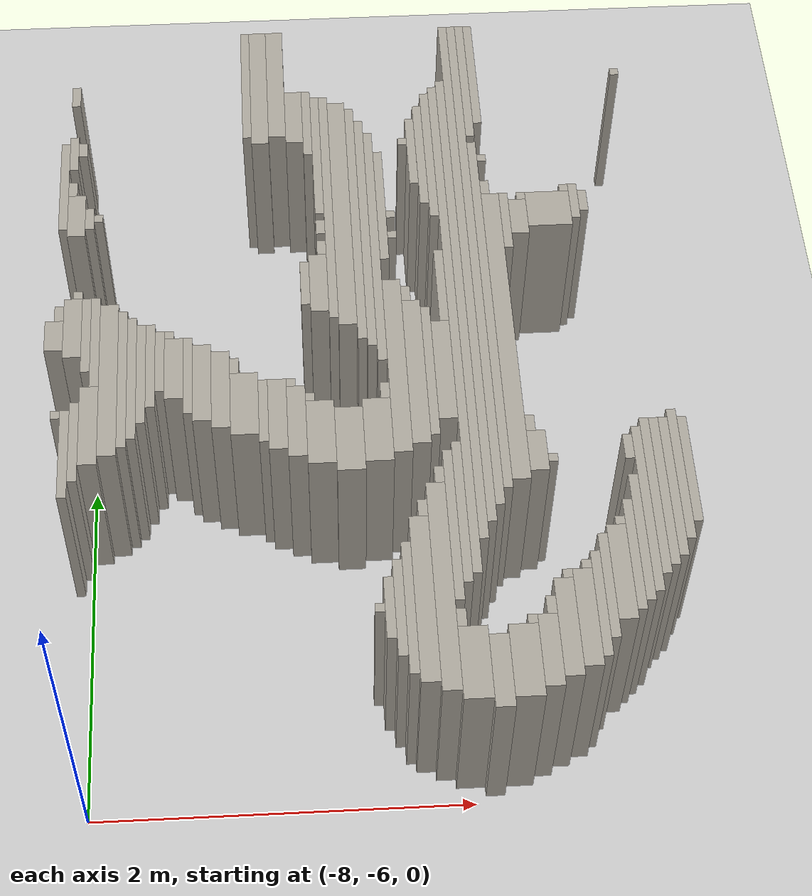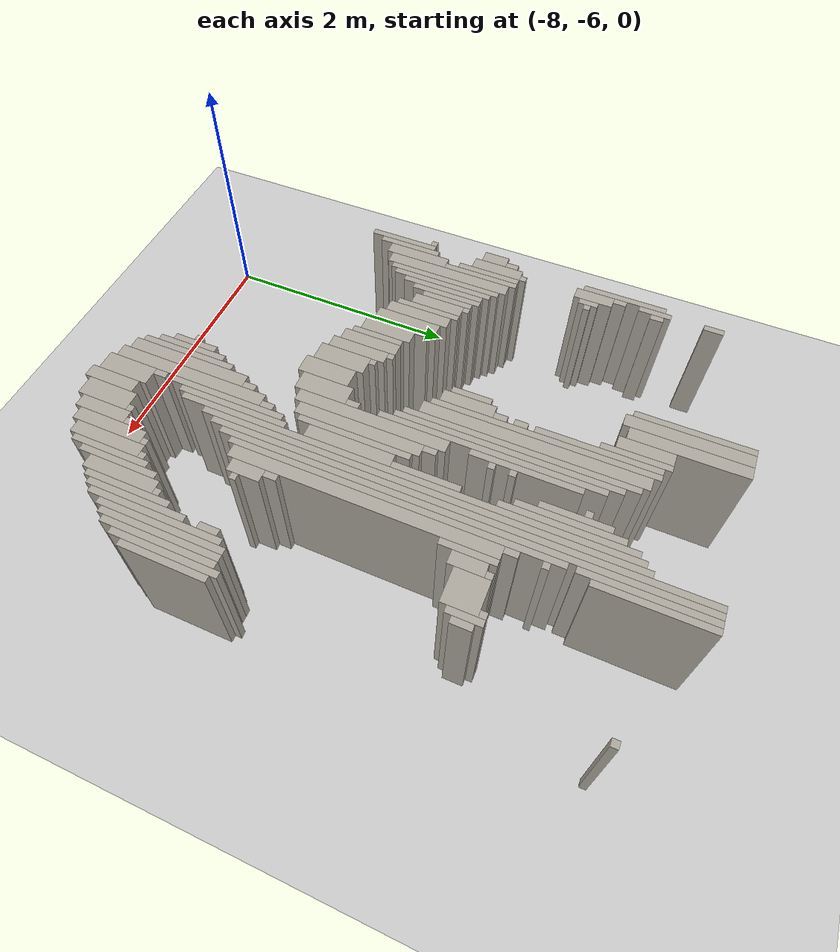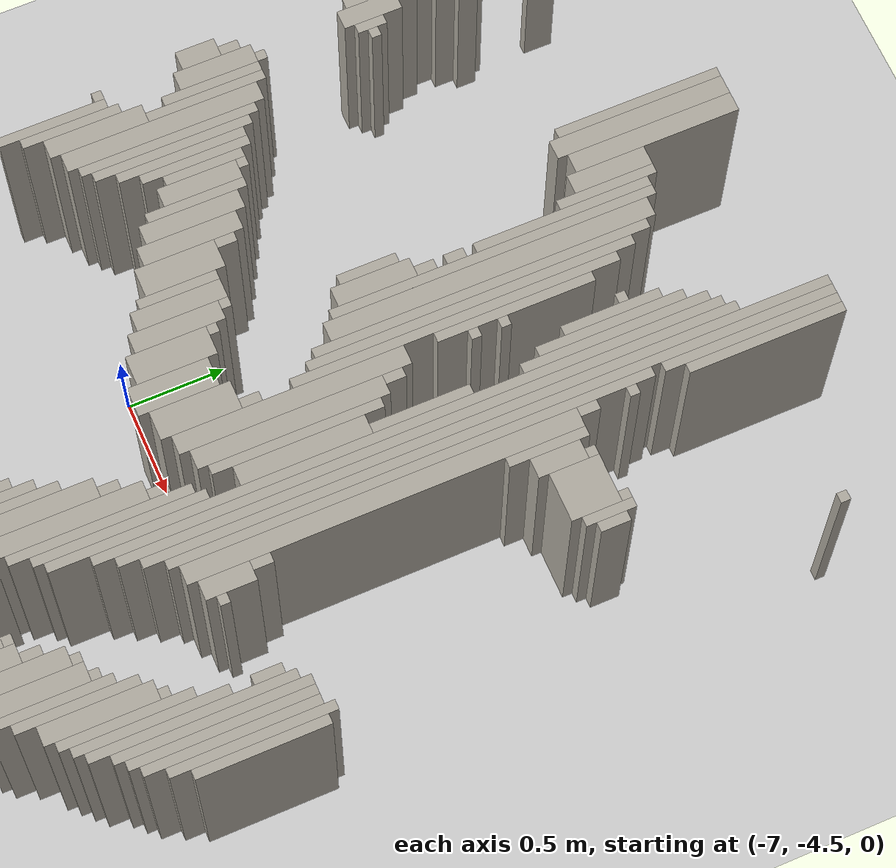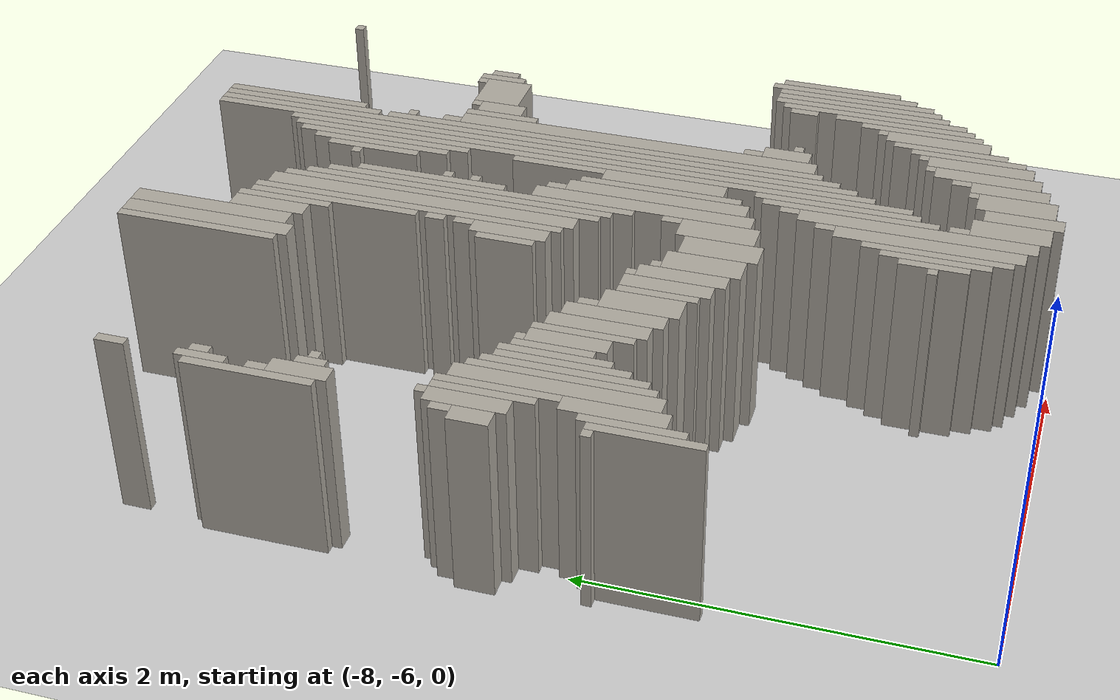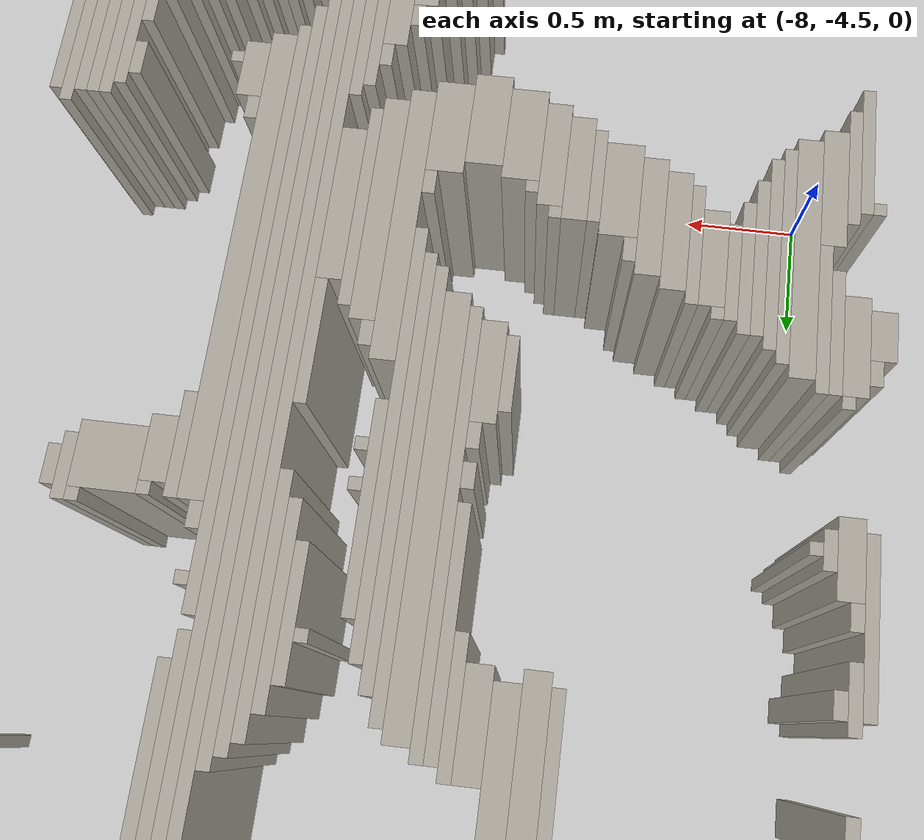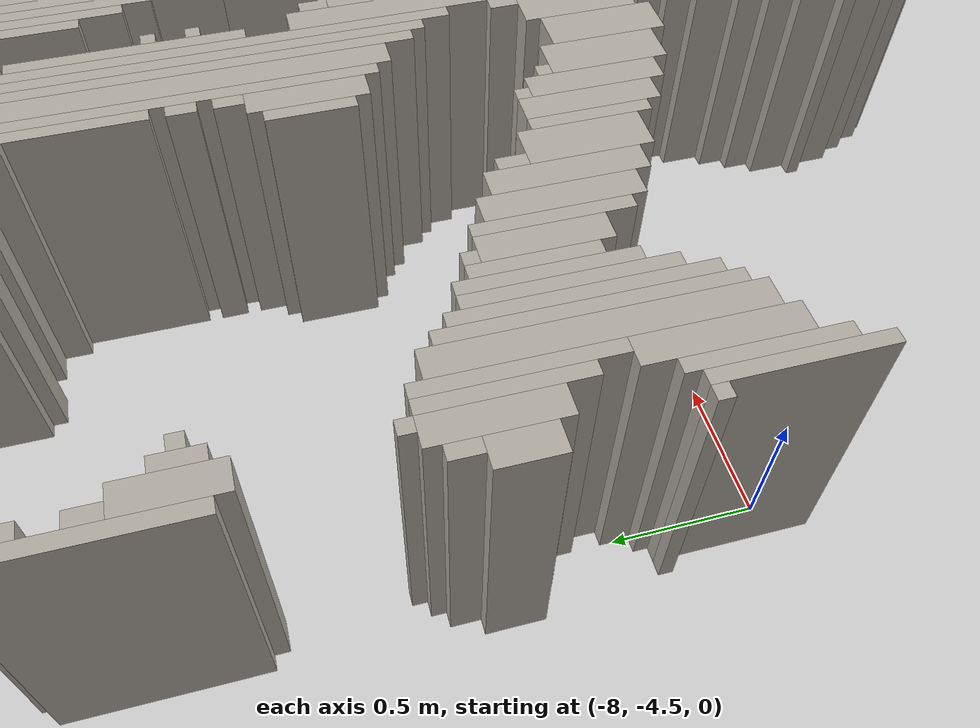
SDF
<sdf version="1.6">
 <world name="fr079_office">
  <include><uri>model://sun</uri></include>
  <include><uri>model://ground_plane</uri></include>
  <model name="fr079_office_walls">
   <static>true</static>
   <link name="w0433">
    <pose>-5.898 -5.756 0.500 0 0 0</pose>
    <collision name="c"><geometry><box><size>0.100 0.400 1.000</size></box></geometry></collision>
    <visual name="v">
     <geometry><box><size>0.100 0.400 1.000</size></box></geometry>
     <material><ambient>0.68 0.66 0.62 1</ambient><diffuse>0.68 0.66 0.62 1</diffuse></material>
    </visual>
   </link>
   <link name="w0450">
    <pose>-6.023 -5.706 0.500 0 0 0</pose>
    <collision name="c"><geometry><box><size>0.150 0.400 1.000</size></box></geometry></collision>
    <visual name="v">
     <geometry><box><size>0.150 0.400 1.000</size></box></geometry>
     <material><ambient>0.68 0.66 0.62 1</ambient><diffuse>0.68 0.66 0.62 1</diffuse></material>
    </visual>
   </link>
   <link name="w0451">
    <pose>-5.773 -5.706 0.500 0 0 0</pose>
    <collision name="c"><geometry><box><size>0.150 0.400 1.000</size></box></geometry></collision>
    <visual name="v">
     <geometry><box><size>0.150 0.400 1.000</size></box></geometry>
     <material><ambient>0.68 0.66 0.62 1</ambient><diffuse>0.68 0.66 0.62 1</diffuse></material>
    </visual>
   </link>
   <link name="w0464">
    <pose>-6.148 -5.256 0.500 0 0 0</pose>
    <collision name="c"><geometry><box><size>0.100 1.200 1.000</size></box></geometry></collision>
    <visual name="v">
     <geometry><box><size>0.100 1.200 1.000</size></box></geometry>
     <material><ambient>0.68 0.66 0.62 1</ambient><diffuse>0.68 0.66 0.62 1</diffuse></material>
    </visual>
   </link>
   <link name="w0465">
    <pose>-5.648 -5.656 0.500 0 0 0</pose>
    <collision name="c"><geometry><box><size>0.100 0.400 1.000</size></box></geometry></collision>
    <visual name="v">
     <geometry><box><size>0.100 0.400 1.000</size></box></geometry>
     <material><ambient>0.68 0.66 0.62 1</ambient><diffuse>0.68 0.66 0.62 1</diffuse></material>
    </visual>
   </link>
   <link name="w0478">
    <pose>-6.248 -5.331 0.500 0 0 0</pose>
    <collision name="c"><geometry><box><size>0.100 0.950 1.000</size></box></geometry></collision>
    <visual name="v">
     <geometry><box><size>0.100 0.950 1.000</size></box></geometry>
     <material><ambient>0.68 0.66 0.62 1</ambient><diffuse>0.68 0.66 0.62 1</diffuse></material>
    </visual>
   </link>
   <link name="w0479">
    <pose>-5.548 -5.531 0.500 0 0 0</pose>
    <collision name="c"><geometry><box><size>0.100 0.550 1.000</size></box></geometry></collision>
    <visual name="v">
     <geometry><box><size>0.100 0.550 1.000</size></box></geometry>
     <material><ambient>0.68 0.66 0.62 1</ambient><diffuse>0.68 0.66 0.62 1</diffuse></material>
    </visual>
   </link>
   <link name="w0494">
    <pose>-6.323 -5.381 0.500 0 0 0</pose>
    <collision name="c"><geometry><box><size>0.050 0.750 1.000</size></box></geometry></collision>
    <visual name="v">
     <geometry><box><size>0.050 0.750 1.000</size></box></geometry>
     <material><ambient>0.68 0.66 0.62 1</ambient><diffuse>0.68 0.66 0.62 1</diffuse></material>
    </visual>
   </link>
   <link name="w0495">
    <pose>-5.448 -5.481 0.500 0 0 0</pose>
    <collision name="c"><geometry><box><size>0.100 0.550 1.000</size></box></geometry></collision>
    <visual name="v">
     <geometry><box><size>0.100 0.550 1.000</size></box></geometry>
     <material><ambient>0.68 0.66 0.62 1</ambient><diffuse>0.68 0.66 0.62 1</diffuse></material>
    </visual>
   </link>
   <link name="w0511">
    <pose>-5.373 -5.406 0.500 0 0 0</pose>
    <collision name="c"><geometry><box><size>0.050 0.600 1.000</size></box></geometry></collision>
    <visual name="v">
     <geometry><box><size>0.050 0.600 1.000</size></box></geometry>
     <material><ambient>0.68 0.66 0.62 1</ambient><diffuse>0.68 0.66 0.62 1</diffuse></material>
    </visual>
   </link>
   <link name="w0520">
    <pose>-6.373 -5.381 0.500 0 0 0</pose>
    <collision name="c"><geometry><box><size>0.050 0.550 1.000</size></box></geometry></collision>
    <visual name="v">
     <geometry><box><size>0.050 0.550 1.000</size></box></geometry>
     <material><ambient>0.68 0.66 0.62 1</ambient><diffuse>0.68 0.66 0.62 1</diffuse></material>
    </visual>
   </link>
   <link name="w0531">
    <pose>-5.323 -5.306 0.500 0 0 0</pose>
    <collision name="c"><geometry><box><size>0.050 0.600 1.000</size></box></geometry></collision>
    <visual name="v">
     <geometry><box><size>0.050 0.600 1.000</size></box></geometry>
     <material><ambient>0.68 0.66 0.62 1</ambient><diffuse>0.68 0.66 0.62 1</diffuse></material>
    </visual>
   </link>
   <link name="w0545">
    <pose>-6.423 -5.381 0.500 0 0 0</pose>
    <collision name="c"><geometry><box><size>0.050 0.350 1.000</size></box></geometry></collision>
    <visual name="v">
     <geometry><box><size>0.050 0.350 1.000</size></box></geometry>
     <material><ambient>0.68 0.66 0.62 1</ambient><diffuse>0.68 0.66 0.62 1</diffuse></material>
    </visual>
   </link>
   <link name="w0556">
    <pose>-6.073 -5.456 0.500 0 0 0</pose>
    <collision name="c"><geometry><box><size>0.050 0.100 1.000</size></box></geometry></collision>
    <visual name="v">
     <geometry><box><size>0.050 0.100 1.000</size></box></geometry>
     <material><ambient>0.68 0.66 0.62 1</ambient><diffuse>0.68 0.66 0.62 1</diffuse></material>
    </visual>
   </link>
   <link name="w0557">
    <pose>-5.723 -5.481 0.500 0 0 0</pose>
    <collision name="c"><geometry><box><size>0.050 0.050 1.000</size></box></geometry></collision>
    <visual name="v">
     <geometry><box><size>0.050 0.050 1.000</size></box></geometry>
     <material><ambient>0.68 0.66 0.62 1</ambient><diffuse>0.68 0.66 0.62 1</diffuse></material>
    </visual>
   </link>
   <link name="w0558">
    <pose>-5.248 -5.231 0.500 0 0 0</pose>
    <collision name="c"><geometry><box><size>0.100 0.550 1.000</size></box></geometry></collision>
    <visual name="v">
     <geometry><box><size>0.100 0.550 1.000</size></box></geometry>
     <material><ambient>0.68 0.66 0.62 1</ambient><diffuse>0.68 0.66 0.62 1</diffuse></material>
    </visual>
   </link>
   <link name="w0563">
    <pose>-5.623 -5.406 0.500 0 0 0</pose>
    <collision name="c"><geometry><box><size>0.050 0.100 1.000</size></box></geometry></collision>
    <visual name="v">
     <geometry><box><size>0.050 0.100 1.000</size></box></geometry>
     <material><ambient>0.68 0.66 0.62 1</ambient><diffuse>0.68 0.66 0.62 1</diffuse></material>
    </visual>
   </link>
   <link name="w0564">
    <pose>-5.173 -5.131 0.500 0 0 0</pose>
    <collision name="c"><geometry><box><size>0.050 0.650 1.000</size></box></geometry></collision>
    <visual name="v">
     <geometry><box><size>0.050 0.650 1.000</size></box></geometry>
     <material><ambient>0.68 0.66 0.62 1</ambient><diffuse>0.68 0.66 0.62 1</diffuse></material>
    </visual>
   </link>
   <link name="w0575">
    <pose>-6.473 -5.381 0.500 0 0 0</pose>
    <collision name="c"><geometry><box><size>0.050 0.050 1.000</size></box></geometry></collision>
    <visual name="v">
     <geometry><box><size>0.050 0.050 1.000</size></box></geometry>
     <material><ambient>0.68 0.66 0.62 1</ambient><diffuse>0.68 0.66 0.62 1</diffuse></material>
    </visual>
   </link>
   <link name="w0576">
    <pose>-5.123 -5.031 0.500 0 0 0</pose>
    <collision name="c"><geometry><box><size>0.050 0.750 1.000</size></box></geometry></collision>
    <visual name="v">
     <geometry><box><size>0.050 0.750 1.000</size></box></geometry>
     <material><ambient>0.68 0.66 0.62 1</ambient><diffuse>0.68 0.66 0.62 1</diffuse></material>
    </visual>
   </link>
   <link name="w0588">
    <pose>-6.073 -4.906 0.500 0 0 0</pose>
    <collision name="c"><geometry><box><size>0.050 0.900 1.000</size></box></geometry></collision>
    <visual name="v">
     <geometry><box><size>0.050 0.900 1.000</size></box></geometry>
     <material><ambient>0.68 0.66 0.62 1</ambient><diffuse>0.68 0.66 0.62 1</diffuse></material>
    </visual>
   </link>
   <link name="w0589">
    <pose>-5.073 -4.856 0.500 0 0 0</pose>
    <collision name="c"><geometry><box><size>0.050 1.000 1.000</size></box></geometry></collision>
    <visual name="v">
     <geometry><box><size>0.050 1.000 1.000</size></box></geometry>
     <material><ambient>0.68 0.66 0.62 1</ambient><diffuse>0.68 0.66 0.62 1</diffuse></material>
    </visual>
   </link>
   <link name="w0618">
    <pose>-6.023 -4.831 0.500 0 0 0</pose>
    <collision name="c"><geometry><box><size>0.050 0.850 1.000</size></box></geometry></collision>
    <visual name="v">
     <geometry><box><size>0.050 0.850 1.000</size></box></geometry>
     <material><ambient>0.68 0.66 0.62 1</ambient><diffuse>0.68 0.66 0.62 1</diffuse></material>
    </visual>
   </link>
   <link name="w0619">
    <pose>-5.523 -5.231 0.500 0 0 0</pose>
    <collision name="c"><geometry><box><size>0.050 0.050 1.000</size></box></geometry></collision>
    <visual name="v">
     <geometry><box><size>0.050 0.050 1.000</size></box></geometry>
     <material><ambient>0.68 0.66 0.62 1</ambient><diffuse>0.68 0.66 0.62 1</diffuse></material>
    </visual>
   </link>
   <link name="w0620">
    <pose>-5.023 -4.781 0.500 0 0 0</pose>
    <collision name="c"><geometry><box><size>0.050 0.950 1.000</size></box></geometry></collision>
    <visual name="v">
     <geometry><box><size>0.050 0.950 1.000</size></box></geometry>
     <material><ambient>0.68 0.66 0.62 1</ambient><diffuse>0.68 0.66 0.62 1</diffuse></material>
    </visual>
   </link>
   <link name="w0634">
    <pose>-5.973 -3.531 0.500 0 0 0</pose>
    <collision name="c"><geometry><box><size>0.050 3.350 1.000</size></box></geometry></collision>
    <visual name="v">
     <geometry><box><size>0.050 3.350 1.000</size></box></geometry>
     <material><ambient>0.68 0.66 0.62 1</ambient><diffuse>0.68 0.66 0.62 1</diffuse></material>
    </visual>
   </link>
   <link name="w0635">
    <pose>-5.423 -5.181 0.500 0 0 0</pose>
    <collision name="c"><geometry><box><size>0.050 0.050 1.000</size></box></geometry></collision>
    <visual name="v">
     <geometry><box><size>0.050 0.050 1.000</size></box></geometry>
     <material><ambient>0.68 0.66 0.62 1</ambient><diffuse>0.68 0.66 0.62 1</diffuse></material>
    </visual>
   </link>
   <link name="w0636">
    <pose>-4.973 -4.756 0.500 0 0 0</pose>
    <collision name="c"><geometry><box><size>0.050 0.900 1.000</size></box></geometry></collision>
    <visual name="v">
     <geometry><box><size>0.050 0.900 1.000</size></box></geometry>
     <material><ambient>0.68 0.66 0.62 1</ambient><diffuse>0.68 0.66 0.62 1</diffuse></material>
    </visual>
   </link>
   <link name="w0650">
    <pose>-4.923 -4.731 0.500 0 0 0</pose>
    <collision name="c"><geometry><box><size>0.050 0.850 1.000</size></box></geometry></collision>
    <visual name="v">
     <geometry><box><size>0.050 0.850 1.000</size></box></geometry>
     <material><ambient>0.68 0.66 0.62 1</ambient><diffuse>0.68 0.66 0.62 1</diffuse></material>
    </visual>
   </link>
   <link name="w0673">
    <pose>-4.873 -4.656 0.500 0 0 0</pose>
    <collision name="c"><geometry><box><size>0.050 0.800 1.000</size></box></geometry></collision>
    <visual name="v">
     <geometry><box><size>0.050 0.800 1.000</size></box></geometry>
     <material><ambient>0.68 0.66 0.62 1</ambient><diffuse>0.68 0.66 0.62 1</diffuse></material>
    </visual>
   </link>
   <link name="w0681">
    <pose>-5.923 -3.406 0.500 0 0 0</pose>
    <collision name="c"><geometry><box><size>0.050 3.200 1.000</size></box></geometry></collision>
    <visual name="v">
     <geometry><box><size>0.050 3.200 1.000</size></box></geometry>
     <material><ambient>0.68 0.66 0.62 1</ambient><diffuse>0.68 0.66 0.62 1</diffuse></material>
    </visual>
   </link>
   <link name="w0693">
    <pose>-5.223 -4.931 0.500 0 0 0</pose>
    <collision name="c"><geometry><box><size>0.050 0.050 1.000</size></box></geometry></collision>
    <visual name="v">
     <geometry><box><size>0.050 0.050 1.000</size></box></geometry>
     <material><ambient>0.68 0.66 0.62 1</ambient><diffuse>0.68 0.66 0.62 1</diffuse></material>
    </visual>
   </link>
   <link name="w0694">
    <pose>-4.823 -4.631 0.500 0 0 0</pose>
    <collision name="c"><geometry><box><size>0.050 0.650 1.000</size></box></geometry></collision>
    <visual name="v">
     <geometry><box><size>0.050 0.650 1.000</size></box></geometry>
     <material><ambient>0.68 0.66 0.62 1</ambient><diffuse>0.68 0.66 0.62 1</diffuse></material>
    </visual>
   </link>
   <link name="w0702">
    <pose>-5.873 -3.131 0.500 0 0 0</pose>
    <collision name="c"><geometry><box><size>0.050 3.550 1.000</size></box></geometry></collision>
    <visual name="v">
     <geometry><box><size>0.050 3.550 1.000</size></box></geometry>
     <material><ambient>0.68 0.66 0.62 1</ambient><diffuse>0.68 0.66 0.62 1</diffuse></material>
    </visual>
   </link>
   <link name="w0715">
    <pose>-6.223 -4.806 0.500 0 0 0</pose>
    <collision name="c"><geometry><box><size>0.050 0.100 1.000</size></box></geometry></collision>
    <visual name="v">
     <geometry><box><size>0.050 0.100 1.000</size></box></geometry>
     <material><ambient>0.68 0.66 0.62 1</ambient><diffuse>0.68 0.66 0.62 1</diffuse></material>
    </visual>
   </link>
   <link name="w0727">
    <pose>-5.823 -3.081 0.500 0 0 0</pose>
    <collision name="c"><geometry><box><size>0.050 3.450 1.000</size></box></geometry></collision>
    <visual name="v">
     <geometry><box><size>0.050 3.450 1.000</size></box></geometry>
     <material><ambient>0.68 0.66 0.62 1</ambient><diffuse>0.68 0.66 0.62 1</diffuse></material>
    </visual>
   </link>
   <link name="w0755">
    <pose>-5.773 -3.506 0.500 0 0 0</pose>
    <collision name="c"><geometry><box><size>0.050 2.400 1.000</size></box></geometry></collision>
    <visual name="v">
     <geometry><box><size>0.050 2.400 1.000</size></box></geometry>
     <material><ambient>0.68 0.66 0.62 1</ambient><diffuse>0.68 0.66 0.62 1</diffuse></material>
    </visual>
   </link>
   <link name="w0767">
    <pose>-8.073 -4.381 0.500 0 0 0</pose>
    <collision name="c"><geometry><box><size>0.050 0.550 1.000</size></box></geometry></collision>
    <visual name="v">
     <geometry><box><size>0.050 0.550 1.000</size></box></geometry>
     <material><ambient>0.68 0.66 0.62 1</ambient><diffuse>0.68 0.66 0.62 1</diffuse></material>
    </visual>
   </link>
   <link name="w0768">
    <pose>-6.123 -4.606 0.500 0 0 0</pose>
    <collision name="c"><geometry><box><size>0.050 0.100 1.000</size></box></geometry></collision>
    <visual name="v">
     <geometry><box><size>0.050 0.100 1.000</size></box></geometry>
     <material><ambient>0.68 0.66 0.62 1</ambient><diffuse>0.68 0.66 0.62 1</diffuse></material>
    </visual>
   </link>
   <link name="w0769">
    <pose>-5.698 -3.681 0.500 0 0 0</pose>
    <collision name="c"><geometry><box><size>0.100 1.950 1.000</size></box></geometry></collision>
    <visual name="v">
     <geometry><box><size>0.100 1.950 1.000</size></box></geometry>
     <material><ambient>0.68 0.66 0.62 1</ambient><diffuse>0.68 0.66 0.62 1</diffuse></material>
    </visual>
   </link>
   <link name="w0786">
    <pose>-5.598 -4.481 0.500 0 0 0</pose>
    <collision name="c"><geometry><box><size>0.100 0.250 1.000</size></box></geometry></collision>
    <visual name="v">
     <geometry><box><size>0.100 0.250 1.000</size></box></geometry>
     <material><ambient>0.68 0.66 0.62 1</ambient><diffuse>0.68 0.66 0.62 1</diffuse></material>
    </visual>
   </link>
   <link name="w0801">
    <pose>-8.023 -4.306 0.500 0 0 0</pose>
    <collision name="c"><geometry><box><size>0.050 0.500 1.000</size></box></geometry></collision>
    <visual name="v">
     <geometry><box><size>0.050 0.500 1.000</size></box></geometry>
     <material><ambient>0.68 0.66 0.62 1</ambient><diffuse>0.68 0.66 0.62 1</diffuse></material>
    </visual>
   </link>
   <link name="w0802">
    <pose>-6.573 -4.356 0.500 0 0 0</pose>
    <collision name="c"><geometry><box><size>0.150 0.400 1.000</size></box></geometry></collision>
    <visual name="v">
     <geometry><box><size>0.150 0.400 1.000</size></box></geometry>
     <material><ambient>0.68 0.66 0.62 1</ambient><diffuse>0.68 0.66 0.62 1</diffuse></material>
    </visual>
   </link>
   <link name="w0803">
    <pose>-5.523 -4.531 0.500 0 0 0</pose>
    <collision name="c"><geometry><box><size>0.050 0.050 1.000</size></box></geometry></collision>
    <visual name="v">
     <geometry><box><size>0.050 0.050 1.000</size></box></geometry>
     <material><ambient>0.68 0.66 0.62 1</ambient><diffuse>0.68 0.66 0.62 1</diffuse></material>
    </visual>
   </link>
   <link name="w0804">
    <pose>-5.123 -4.481 0.500 0 0 0</pose>
    <collision name="c"><geometry><box><size>0.050 0.150 1.000</size></box></geometry></collision>
    <visual name="v">
     <geometry><box><size>0.050 0.150 1.000</size></box></geometry>
     <material><ambient>0.68 0.66 0.62 1</ambient><diffuse>0.68 0.66 0.62 1</diffuse></material>
    </visual>
   </link>
   <link name="w0819">
    <pose>-6.723 -4.306 0.500 0 0 0</pose>
    <collision name="c"><geometry><box><size>0.150 0.400 1.000</size></box></geometry></collision>
    <visual name="v">
     <geometry><box><size>0.150 0.400 1.000</size></box></geometry>
     <material><ambient>0.68 0.66 0.62 1</ambient><diffuse>0.68 0.66 0.62 1</diffuse></material>
    </visual>
   </link>
   <link name="w0820">
    <pose>-6.423 -4.306 0.500 0 0 0</pose>
    <collision name="c"><geometry><box><size>0.150 0.400 1.000</size></box></geometry></collision>
    <visual name="v">
     <geometry><box><size>0.150 0.400 1.000</size></box></geometry>
     <material><ambient>0.68 0.66 0.62 1</ambient><diffuse>0.68 0.66 0.62 1</diffuse></material>
    </visual>
   </link>
   <link name="w0835">
    <pose>-7.948 -4.206 0.500 0 0 0</pose>
    <collision name="c"><geometry><box><size>0.100 0.500 1.000</size></box></geometry></collision>
    <visual name="v">
     <geometry><box><size>0.100 0.500 1.000</size></box></geometry>
     <material><ambient>0.68 0.66 0.62 1</ambient><diffuse>0.68 0.66 0.62 1</diffuse></material>
    </visual>
   </link>
   <link name="w0836">
    <pose>-6.848 -4.231 0.500 0 0 0</pose>
    <collision name="c"><geometry><box><size>0.100 0.450 1.000</size></box></geometry></collision>
    <visual name="v">
     <geometry><box><size>0.100 0.450 1.000</size></box></geometry>
     <material><ambient>0.68 0.66 0.62 1</ambient><diffuse>0.68 0.66 0.62 1</diffuse></material>
    </visual>
   </link>
   <link name="w0837">
    <pose>-6.298 -3.881 0.500 0 0 0</pose>
    <collision name="c"><geometry><box><size>0.100 1.150 1.000</size></box></geometry></collision>
    <visual name="v">
     <geometry><box><size>0.100 1.150 1.000</size></box></geometry>
     <material><ambient>0.68 0.66 0.62 1</ambient><diffuse>0.68 0.66 0.62 1</diffuse></material>
    </visual>
   </link>
   <link name="w0849">
    <pose>-7.848 -3.906 0.500 0 0 0</pose>
    <collision name="c"><geometry><box><size>0.100 1.000 1.000</size></box></geometry></collision>
    <visual name="v">
     <geometry><box><size>0.100 1.000 1.000</size></box></geometry>
     <material><ambient>0.68 0.66 0.62 1</ambient><diffuse>0.68 0.66 0.62 1</diffuse></material>
    </visual>
   </link>
   <link name="w0850">
    <pose>-6.948 -4.181 0.500 0 0 0</pose>
    <collision name="c"><geometry><box><size>0.100 0.450 1.000</size></box></geometry></collision>
    <visual name="v">
     <geometry><box><size>0.100 0.450 1.000</size></box></geometry>
     <material><ambient>0.68 0.66 0.62 1</ambient><diffuse>0.68 0.66 0.62 1</diffuse></material>
    </visual>
   </link>
   <link name="w0851">
    <pose>-6.198 -3.931 0.500 0 0 0</pose>
    <collision name="c"><geometry><box><size>0.100 0.950 1.000</size></box></geometry></collision>
    <visual name="v">
     <geometry><box><size>0.100 0.950 1.000</size></box></geometry>
     <material><ambient>0.68 0.66 0.62 1</ambient><diffuse>0.68 0.66 0.62 1</diffuse></material>
    </visual>
   </link>
   <link name="w0863">
    <pose>-7.773 -3.906 0.500 0 0 0</pose>
    <collision name="c"><geometry><box><size>0.050 0.900 1.000</size></box></geometry></collision>
    <visual name="v">
     <geometry><box><size>0.050 0.900 1.000</size></box></geometry>
     <material><ambient>0.68 0.66 0.62 1</ambient><diffuse>0.68 0.66 0.62 1</diffuse></material>
    </visual>
   </link>
   <link name="w0864">
    <pose>-7.023 -4.156 0.500 0 0 0</pose>
    <collision name="c"><geometry><box><size>0.050 0.400 1.000</size></box></geometry></collision>
    <visual name="v">
     <geometry><box><size>0.050 0.400 1.000</size></box></geometry>
     <material><ambient>0.68 0.66 0.62 1</ambient><diffuse>0.68 0.66 0.62 1</diffuse></material>
    </visual>
   </link>
   <link name="w0865">
    <pose>-6.123 -3.931 0.500 0 0 0</pose>
    <collision name="c"><geometry><box><size>0.050 0.850 1.000</size></box></geometry></collision>
    <visual name="v">
     <geometry><box><size>0.050 0.850 1.000</size></box></geometry>
     <material><ambient>0.68 0.66 0.62 1</ambient><diffuse>0.68 0.66 0.62 1</diffuse></material>
    </visual>
   </link>
   <link name="w0866">
    <pose>-5.623 -4.306 0.500 0 0 0</pose>
    <collision name="c"><geometry><box><size>0.050 0.100 1.000</size></box></geometry></collision>
    <visual name="v">
     <geometry><box><size>0.050 0.100 1.000</size></box></geometry>
     <material><ambient>0.68 0.66 0.62 1</ambient><diffuse>0.68 0.66 0.62 1</diffuse></material>
    </visual>
   </link>
   <link name="w0877">
    <pose>-7.723 -3.906 0.500 0 0 0</pose>
    <collision name="c"><geometry><box><size>0.050 0.800 1.000</size></box></geometry></collision>
    <visual name="v">
     <geometry><box><size>0.050 0.800 1.000</size></box></geometry>
     <material><ambient>0.68 0.66 0.62 1</ambient><diffuse>0.68 0.66 0.62 1</diffuse></material>
    </visual>
   </link>
   <link name="w0878">
    <pose>-7.123 -4.106 0.500 0 0 0</pose>
    <collision name="c"><geometry><box><size>0.150 0.400 1.000</size></box></geometry></collision>
    <visual name="v">
     <geometry><box><size>0.150 0.400 1.000</size></box></geometry>
     <material><ambient>0.68 0.66 0.62 1</ambient><diffuse>0.68 0.66 0.62 1</diffuse></material>
    </visual>
   </link>
   <link name="w0889">
    <pose>-7.248 -4.006 0.500 0 0 0</pose>
    <collision name="c"><geometry><box><size>0.100 0.500 1.000</size></box></geometry></collision>
    <visual name="v">
     <geometry><box><size>0.100 0.500 1.000</size></box></geometry>
     <material><ambient>0.68 0.66 0.62 1</ambient><diffuse>0.68 0.66 0.62 1</diffuse></material>
    </visual>
   </link>
   <link name="w0890">
    <pose>-6.048 -3.931 0.500 0 0 0</pose>
    <collision name="c"><geometry><box><size>0.100 0.650 1.000</size></box></geometry></collision>
    <visual name="v">
     <geometry><box><size>0.100 0.650 1.000</size></box></geometry>
     <material><ambient>0.68 0.66 0.62 1</ambient><diffuse>0.68 0.66 0.62 1</diffuse></material>
    </visual>
   </link>
   <link name="w0908">
    <pose>-7.673 -3.881 0.500 0 0 0</pose>
    <collision name="c"><geometry><box><size>0.050 0.650 1.000</size></box></geometry></collision>
    <visual name="v">
     <geometry><box><size>0.050 0.650 1.000</size></box></geometry>
     <material><ambient>0.68 0.66 0.62 1</ambient><diffuse>0.68 0.66 0.62 1</diffuse></material>
    </visual>
   </link>
   <link name="w0909">
    <pose>-7.348 -3.956 0.500 0 0 0</pose>
    <collision name="c"><geometry><box><size>0.100 0.500 1.000</size></box></geometry></collision>
    <visual name="v">
     <geometry><box><size>0.100 0.500 1.000</size></box></geometry>
     <material><ambient>0.68 0.66 0.62 1</ambient><diffuse>0.68 0.66 0.62 1</diffuse></material>
    </visual>
   </link>
   <link name="w0927">
    <pose>-8.123 -4.131 0.500 0 0 0</pose>
    <collision name="c"><geometry><box><size>0.050 0.050 1.000</size></box></geometry></collision>
    <visual name="v">
     <geometry><box><size>0.050 0.050 1.000</size></box></geometry>
     <material><ambient>0.68 0.66 0.62 1</ambient><diffuse>0.68 0.66 0.62 1</diffuse></material>
    </visual>
   </link>
   <link name="w0928">
    <pose>-7.423 -3.906 0.500 0 0 0</pose>
    <collision name="c"><geometry><box><size>0.050 0.500 1.000</size></box></geometry></collision>
    <visual name="v">
     <geometry><box><size>0.050 0.500 1.000</size></box></geometry>
     <material><ambient>0.68 0.66 0.62 1</ambient><diffuse>0.68 0.66 0.62 1</diffuse></material>
    </visual>
   </link>
   <link name="w0942">
    <pose>-7.623 -3.831 0.500 0 0 0</pose>
    <collision name="c"><geometry><box><size>0.050 0.550 1.000</size></box></geometry></collision>
    <visual name="v">
     <geometry><box><size>0.050 0.550 1.000</size></box></geometry>
     <material><ambient>0.68 0.66 0.62 1</ambient><diffuse>0.68 0.66 0.62 1</diffuse></material>
    </visual>
   </link>
   <link name="w0943">
    <pose>-6.773 -4.081 0.500 0 0 0</pose>
    <collision name="c"><geometry><box><size>0.050 0.050 1.000</size></box></geometry></collision>
    <visual name="v">
     <geometry><box><size>0.050 0.050 1.000</size></box></geometry>
     <material><ambient>0.68 0.66 0.62 1</ambient><diffuse>0.68 0.66 0.62 1</diffuse></material>
    </visual>
   </link>
   <link name="w0944">
    <pose>-6.373 -4.056 0.500 0 0 0</pose>
    <collision name="c"><geometry><box><size>0.050 0.100 1.000</size></box></geometry></collision>
    <visual name="v">
     <geometry><box><size>0.050 0.100 1.000</size></box></geometry>
     <material><ambient>0.68 0.66 0.62 1</ambient><diffuse>0.68 0.66 0.62 1</diffuse></material>
    </visual>
   </link>
   <link name="w0955">
    <pose>-7.498 -3.856 0.500 0 0 0</pose>
    <collision name="c"><geometry><box><size>0.100 0.400 1.000</size></box></geometry></collision>
    <visual name="v">
     <geometry><box><size>0.100 0.400 1.000</size></box></geometry>
     <material><ambient>0.68 0.66 0.62 1</ambient><diffuse>0.68 0.66 0.62 1</diffuse></material>
    </visual>
   </link>
   <link name="w0963">
    <pose>-7.573 -3.806 0.500 0 0 0</pose>
    <collision name="c"><geometry><box><size>0.050 0.400 1.000</size></box></geometry></collision>
    <visual name="v">
     <geometry><box><size>0.050 0.400 1.000</size></box></geometry>
     <material><ambient>0.68 0.66 0.62 1</ambient><diffuse>0.68 0.66 0.62 1</diffuse></material>
    </visual>
   </link>
   <link name="w0964">
    <pose>-6.873 -3.981 0.500 0 0 0</pose>
    <collision name="c"><geometry><box><size>0.050 0.050 1.000</size></box></geometry></collision>
    <visual name="v">
     <geometry><box><size>0.050 0.050 1.000</size></box></geometry>
     <material><ambient>0.68 0.66 0.62 1</ambient><diffuse>0.68 0.66 0.62 1</diffuse></material>
    </visual>
   </link>
   <link name="w0977">
    <pose>-7.923 -3.656 0.500 0 0 0</pose>
    <collision name="c"><geometry><box><size>0.050 0.600 1.000</size></box></geometry></collision>
    <visual name="v">
     <geometry><box><size>0.050 0.600 1.000</size></box></geometry>
     <material><ambient>0.68 0.66 0.62 1</ambient><diffuse>0.68 0.66 0.62 1</diffuse></material>
    </visual>
   </link>
   <link name="w0995">
    <pose>-7.173 -3.856 0.500 0 0 0</pose>
    <collision name="c"><geometry><box><size>0.050 0.100 1.000</size></box></geometry></collision>
    <visual name="v">
     <geometry><box><size>0.050 0.100 1.000</size></box></geometry>
     <material><ambient>0.68 0.66 0.62 1</ambient><diffuse>0.68 0.66 0.62 1</diffuse></material>
    </visual>
   </link>
   <link name="w1003">
    <pose>-7.973 -3.606 0.500 0 0 0</pose>
    <collision name="c"><geometry><box><size>0.050 0.500 1.000</size></box></geometry></collision>
    <visual name="v">
     <geometry><box><size>0.050 0.500 1.000</size></box></geometry>
     <material><ambient>0.68 0.66 0.62 1</ambient><diffuse>0.68 0.66 0.62 1</diffuse></material>
    </visual>
   </link>
   <link name="w1004">
    <pose>-6.373 -3.031 0.500 0 0 0</pose>
    <collision name="c"><geometry><box><size>0.050 1.650 1.000</size></box></geometry></collision>
    <visual name="v">
     <geometry><box><size>0.050 1.650 1.000</size></box></geometry>
     <material><ambient>0.68 0.66 0.62 1</ambient><diffuse>0.68 0.66 0.62 1</diffuse></material>
    </visual>
   </link>
   <link name="w1032">
    <pose>-8.048 -3.556 0.500 0 0 0</pose>
    <collision name="c"><geometry><box><size>0.100 0.400 1.000</size></box></geometry></collision>
    <visual name="v">
     <geometry><box><size>0.100 0.400 1.000</size></box></geometry>
     <material><ambient>0.68 0.66 0.62 1</ambient><diffuse>0.68 0.66 0.62 1</diffuse></material>
    </visual>
   </link>
   <link name="w1033">
    <pose>-6.423 -2.931 0.500 0 0 0</pose>
    <collision name="c"><geometry><box><size>0.050 1.650 1.000</size></box></geometry></collision>
    <visual name="v">
     <geometry><box><size>0.050 1.650 1.000</size></box></geometry>
     <material><ambient>0.68 0.66 0.62 1</ambient><diffuse>0.68 0.66 0.62 1</diffuse></material>
    </visual>
   </link>
   <link name="w1043">
    <pose>-8.148 -3.606 0.500 0 0 0</pose>
    <collision name="c"><geometry><box><size>0.100 0.200 1.000</size></box></geometry></collision>
    <visual name="v">
     <geometry><box><size>0.100 0.200 1.000</size></box></geometry>
     <material><ambient>0.68 0.66 0.62 1</ambient><diffuse>0.68 0.66 0.62 1</diffuse></material>
    </visual>
   </link>
   <link name="w1044">
    <pose>-6.473 -2.856 0.500 0 0 0</pose>
    <collision name="c"><geometry><box><size>0.050 1.700 1.000</size></box></geometry></collision>
    <visual name="v">
     <geometry><box><size>0.050 1.700 1.000</size></box></geometry>
     <material><ambient>0.68 0.66 0.62 1</ambient><diffuse>0.68 0.66 0.62 1</diffuse></material>
    </visual>
   </link>
   <link name="w1057">
    <pose>-7.523 -3.631 0.500 0 0 0</pose>
    <collision name="c"><geometry><box><size>0.050 0.050 1.000</size></box></geometry></collision>
    <visual name="v">
     <geometry><box><size>0.050 0.050 1.000</size></box></geometry>
     <material><ambient>0.68 0.66 0.62 1</ambient><diffuse>0.68 0.66 0.62 1</diffuse></material>
    </visual>
   </link>
   <link name="w1066">
    <pose>-6.548 -2.781 0.500 0 0 0</pose>
    <collision name="c"><geometry><box><size>0.100 1.650 1.000</size></box></geometry></collision>
    <visual name="v">
     <geometry><box><size>0.100 1.650 1.000</size></box></geometry>
     <material><ambient>0.68 0.66 0.62 1</ambient><diffuse>0.68 0.66 0.62 1</diffuse></material>
    </visual>
   </link>
   <link name="w1067">
    <pose>-6.023 -3.356 0.500 0 0 0</pose>
    <collision name="c"><geometry><box><size>0.050 0.500 1.000</size></box></geometry></collision>
    <visual name="v">
     <geometry><box><size>0.050 0.500 1.000</size></box></geometry>
     <material><ambient>0.68 0.66 0.62 1</ambient><diffuse>0.68 0.66 0.62 1</diffuse></material>
    </visual>
   </link>
   <link name="w1077">
    <pose>-6.623 -2.731 0.500 0 0 0</pose>
    <collision name="c"><geometry><box><size>0.050 1.650 1.000</size></box></geometry></collision>
    <visual name="v">
     <geometry><box><size>0.050 1.650 1.000</size></box></geometry>
     <material><ambient>0.68 0.66 0.62 1</ambient><diffuse>0.68 0.66 0.62 1</diffuse></material>
    </visual>
   </link>
   <link name="w1081">
    <pose>-8.123 -3.456 0.500 0 0 0</pose>
    <collision name="c"><geometry><box><size>0.050 0.100 1.000</size></box></geometry></collision>
    <visual name="v">
     <geometry><box><size>0.050 0.100 1.000</size></box></geometry>
     <material><ambient>0.68 0.66 0.62 1</ambient><diffuse>0.68 0.66 0.62 1</diffuse></material>
    </visual>
   </link>
   <link name="w1082">
    <pose>-6.698 -3.306 0.500 0 0 0</pose>
    <collision name="c"><geometry><box><size>0.100 0.400 1.000</size></box></geometry></collision>
    <visual name="v">
     <geometry><box><size>0.100 0.400 1.000</size></box></geometry>
     <material><ambient>0.68 0.66 0.62 1</ambient><diffuse>0.68 0.66 0.62 1</diffuse></material>
    </visual>
   </link>
   <link name="w1090">
    <pose>-6.773 -3.306 0.500 0 0 0</pose>
    <collision name="c"><geometry><box><size>0.050 0.300 1.000</size></box></geometry></collision>
    <visual name="v">
     <geometry><box><size>0.050 0.300 1.000</size></box></geometry>
     <material><ambient>0.68 0.66 0.62 1</ambient><diffuse>0.68 0.66 0.62 1</diffuse></material>
    </visual>
   </link>
   <link name="w1091">
    <pose>-6.223 -3.406 0.500 0 0 0</pose>
    <collision name="c"><geometry><box><size>0.050 0.100 1.000</size></box></geometry></collision>
    <visual name="v">
     <geometry><box><size>0.050 0.100 1.000</size></box></geometry>
     <material><ambient>0.68 0.66 0.62 1</ambient><diffuse>0.68 0.66 0.62 1</diffuse></material>
    </visual>
   </link>
   <link name="w1105">
    <pose>-8.023 -3.331 0.500 0 0 0</pose>
    <collision name="c"><geometry><box><size>0.050 0.050 1.000</size></box></geometry></collision>
    <visual name="v">
     <geometry><box><size>0.050 0.050 1.000</size></box></geometry>
     <material><ambient>0.68 0.66 0.62 1</ambient><diffuse>0.68 0.66 0.62 1</diffuse></material>
    </visual>
   </link>
   <link name="w1124">
    <pose>-6.323 -2.756 0.500 0 0 0</pose>
    <collision name="c"><geometry><box><size>0.050 0.800 1.000</size></box></geometry></collision>
    <visual name="v">
     <geometry><box><size>0.050 0.800 1.000</size></box></geometry>
     <material><ambient>0.68 0.66 0.62 1</ambient><diffuse>0.68 0.66 0.62 1</diffuse></material>
    </visual>
   </link>
   <link name="w1131">
    <pose>-6.673 -3.056 0.500 0 0 0</pose>
    <collision name="c"><geometry><box><size>0.050 0.100 1.000</size></box></geometry></collision>
    <visual name="v">
     <geometry><box><size>0.050 0.100 1.000</size></box></geometry>
     <material><ambient>0.68 0.66 0.62 1</ambient><diffuse>0.68 0.66 0.62 1</diffuse></material>
    </visual>
   </link>
   <link name="w1132">
    <pose>-5.623 -2.906 0.500 0 0 0</pose>
    <collision name="c"><geometry><box><size>0.050 0.400 1.000</size></box></geometry></collision>
    <visual name="v">
     <geometry><box><size>0.050 0.400 1.000</size></box></geometry>
     <material><ambient>0.68 0.66 0.62 1</ambient><diffuse>0.68 0.66 0.62 1</diffuse></material>
    </visual>
   </link>
   <link name="w1150">
    <pose>-6.273 -2.981 0.500 0 0 0</pose>
    <collision name="c"><geometry><box><size>0.050 0.050 1.000</size></box></geometry></collision>
    <visual name="v">
     <geometry><box><size>0.050 0.050 1.000</size></box></geometry>
     <material><ambient>0.68 0.66 0.62 1</ambient><diffuse>0.68 0.66 0.62 1</diffuse></material>
    </visual>
   </link>
   <link name="w1151">
    <pose>-5.548 -2.881 0.500 0 0 0</pose>
    <collision name="c"><geometry><box><size>0.100 0.250 1.000</size></box></geometry></collision>
    <visual name="v">
     <geometry><box><size>0.100 0.250 1.000</size></box></geometry>
     <material><ambient>0.68 0.66 0.62 1</ambient><diffuse>0.68 0.66 0.62 1</diffuse></material>
    </visual>
   </link>
   <link name="w1161">
    <pose>-6.673 -2.906 0.500 0 0 0</pose>
    <collision name="c"><geometry><box><size>0.050 0.100 1.000</size></box></geometry></collision>
    <visual name="v">
     <geometry><box><size>0.050 0.100 1.000</size></box></geometry>
     <material><ambient>0.68 0.66 0.62 1</ambient><diffuse>0.68 0.66 0.62 1</diffuse></material>
    </visual>
   </link>
   <link name="w1162">
    <pose>-5.373 -2.831 0.500 0 0 0</pose>
    <collision name="c"><geometry><box><size>0.250 0.250 1.000</size></box></geometry></collision>
    <visual name="v">
     <geometry><box><size>0.250 0.250 1.000</size></box></geometry>
     <material><ambient>0.68 0.66 0.62 1</ambient><diffuse>0.68 0.66 0.62 1</diffuse></material>
    </visual>
   </link>
   <link name="w1175">
    <pose>-8.048 -2.756 0.500 0 0 0</pose>
    <collision name="c"><geometry><box><size>0.100 0.300 1.000</size></box></geometry></collision>
    <visual name="v">
     <geometry><box><size>0.100 0.300 1.000</size></box></geometry>
     <material><ambient>0.68 0.66 0.62 1</ambient><diffuse>0.68 0.66 0.62 1</diffuse></material>
    </visual>
   </link>
   <link name="w1176">
    <pose>-5.223 -2.781 0.500 0 0 0</pose>
    <collision name="c"><geometry><box><size>0.050 0.250 1.000</size></box></geometry></collision>
    <visual name="v">
     <geometry><box><size>0.050 0.250 1.000</size></box></geometry>
     <material><ambient>0.68 0.66 0.62 1</ambient><diffuse>0.68 0.66 0.62 1</diffuse></material>
    </visual>
   </link>
   <link name="w1188">
    <pose>-8.123 -2.531 0.500 0 0 0</pose>
    <collision name="c"><geometry><box><size>0.050 0.650 1.000</size></box></geometry></collision>
    <visual name="v">
     <geometry><box><size>0.050 0.650 1.000</size></box></geometry>
     <material><ambient>0.68 0.66 0.62 1</ambient><diffuse>0.68 0.66 0.62 1</diffuse></material>
    </visual>
   </link>
   <link name="w1189">
    <pose>-7.973 -2.781 0.500 0 0 0</pose>
    <collision name="c"><geometry><box><size>0.050 0.150 1.000</size></box></geometry></collision>
    <visual name="v">
     <geometry><box><size>0.050 0.150 1.000</size></box></geometry>
     <material><ambient>0.68 0.66 0.62 1</ambient><diffuse>0.68 0.66 0.62 1</diffuse></material>
    </visual>
   </link>
   <link name="w1190">
    <pose>-6.273 -2.831 0.500 0 0 0</pose>
    <collision name="c"><geometry><box><size>0.050 0.050 1.000</size></box></geometry></collision>
    <visual name="v">
     <geometry><box><size>0.050 0.050 1.000</size></box></geometry>
     <material><ambient>0.68 0.66 0.62 1</ambient><diffuse>0.68 0.66 0.62 1</diffuse></material>
    </visual>
   </link>
   <link name="w1191">
    <pose>-6.023 -2.381 0.500 0 0 0</pose>
    <collision name="c"><geometry><box><size>0.050 0.950 1.000</size></box></geometry></collision>
    <visual name="v">
     <geometry><box><size>0.050 0.950 1.000</size></box></geometry>
     <material><ambient>0.68 0.66 0.62 1</ambient><diffuse>0.68 0.66 0.62 1</diffuse></material>
    </visual>
   </link>
   <link name="w1192">
    <pose>-5.173 -2.781 0.500 0 0 0</pose>
    <collision name="c"><geometry><box><size>0.050 0.150 1.000</size></box></geometry></collision>
    <visual name="v">
     <geometry><box><size>0.050 0.150 1.000</size></box></geometry>
     <material><ambient>0.68 0.66 0.62 1</ambient><diffuse>0.68 0.66 0.62 1</diffuse></material>
    </visual>
   </link>
   <link name="w1202">
    <pose>-7.923 -2.781 0.500 0 0 0</pose>
    <collision name="c"><geometry><box><size>0.050 0.050 1.000</size></box></geometry></collision>
    <visual name="v">
     <geometry><box><size>0.050 0.050 1.000</size></box></geometry>
     <material><ambient>0.68 0.66 0.62 1</ambient><diffuse>0.68 0.66 0.62 1</diffuse></material>
    </visual>
   </link>
   <link name="w1203">
    <pose>-6.673 -2.356 0.500 0 0 0</pose>
    <collision name="c"><geometry><box><size>0.050 0.900 1.000</size></box></geometry></collision>
    <visual name="v">
     <geometry><box><size>0.050 0.900 1.000</size></box></geometry>
     <material><ambient>0.68 0.66 0.62 1</ambient><diffuse>0.68 0.66 0.62 1</diffuse></material>
    </visual>
   </link>
   <link name="w1209">
    <pose>-6.073 -2.381 0.500 0 0 0</pose>
    <collision name="c"><geometry><box><size>0.050 0.750 1.000</size></box></geometry></collision>
    <visual name="v">
     <geometry><box><size>0.050 0.750 1.000</size></box></geometry>
     <material><ambient>0.68 0.66 0.62 1</ambient><diffuse>0.68 0.66 0.62 1</diffuse></material>
    </visual>
   </link>
   <link name="w1210">
    <pose>-5.523 -2.731 0.500 0 0 0</pose>
    <collision name="c"><geometry><box><size>0.050 0.050 1.000</size></box></geometry></collision>
    <visual name="v">
     <geometry><box><size>0.050 0.050 1.000</size></box></geometry>
     <material><ambient>0.68 0.66 0.62 1</ambient><diffuse>0.68 0.66 0.62 1</diffuse></material>
    </visual>
   </link>
   <link name="w1223">
    <pose>-5.723 -2.656 0.500 0 0 0</pose>
    <collision name="c"><geometry><box><size>0.050 0.100 1.000</size></box></geometry></collision>
    <visual name="v">
     <geometry><box><size>0.050 0.100 1.000</size></box></geometry>
     <material><ambient>0.68 0.66 0.62 1</ambient><diffuse>0.68 0.66 0.62 1</diffuse></material>
    </visual>
   </link>
   <link name="w1224">
    <pose>-5.273 -2.681 0.500 0 0 0</pose>
    <collision name="c"><geometry><box><size>0.050 0.050 1.000</size></box></geometry></collision>
    <visual name="v">
     <geometry><box><size>0.050 0.050 1.000</size></box></geometry>
     <material><ambient>0.68 0.66 0.62 1</ambient><diffuse>0.68 0.66 0.62 1</diffuse></material>
    </visual>
   </link>
   <link name="w1251">
    <pose>-8.073 -2.556 0.500 0 0 0</pose>
    <collision name="c"><geometry><box><size>0.050 0.100 1.000</size></box></geometry></collision>
    <visual name="v">
     <geometry><box><size>0.050 0.100 1.000</size></box></geometry>
     <material><ambient>0.68 0.66 0.62 1</ambient><diffuse>0.68 0.66 0.62 1</diffuse></material>
    </visual>
   </link>
   <link name="w1252">
    <pose>-6.123 -2.356 0.500 0 0 0</pose>
    <collision name="c"><geometry><box><size>0.050 0.500 1.000</size></box></geometry></collision>
    <visual name="v">
     <geometry><box><size>0.050 0.500 1.000</size></box></geometry>
     <material><ambient>0.68 0.66 0.62 1</ambient><diffuse>0.68 0.66 0.62 1</diffuse></material>
    </visual>
   </link>
   <link name="w1297">
    <pose>-5.723 -2.431 0.500 0 0 0</pose>
    <collision name="c"><geometry><box><size>0.050 0.050 1.000</size></box></geometry></collision>
    <visual name="v">
     <geometry><box><size>0.050 0.050 1.000</size></box></geometry>
     <material><ambient>0.68 0.66 0.62 1</ambient><diffuse>0.68 0.66 0.62 1</diffuse></material>
    </visual>
   </link>
   <link name="w1318">
    <pose>-8.073 -2.281 0.500 0 0 0</pose>
    <collision name="c"><geometry><box><size>0.050 0.250 1.000</size></box></geometry></collision>
    <visual name="v">
     <geometry><box><size>0.050 0.250 1.000</size></box></geometry>
     <material><ambient>0.68 0.66 0.62 1</ambient><diffuse>0.68 0.66 0.62 1</diffuse></material>
    </visual>
   </link>
   <link name="w1335">
    <pose>-6.723 -2.106 0.500 0 0 0</pose>
    <collision name="c"><geometry><box><size>0.050 0.500 1.000</size></box></geometry></collision>
    <visual name="v">
     <geometry><box><size>0.050 0.500 1.000</size></box></geometry>
     <material><ambient>0.68 0.66 0.62 1</ambient><diffuse>0.68 0.66 0.62 1</diffuse></material>
    </visual>
   </link>
   <link name="w1352">
    <pose>-8.023 -2.256 0.500 0 0 0</pose>
    <collision name="c"><geometry><box><size>0.050 0.100 1.000</size></box></geometry></collision>
    <visual name="v">
     <geometry><box><size>0.050 0.100 1.000</size></box></geometry>
     <material><ambient>0.68 0.66 0.62 1</ambient><diffuse>0.68 0.66 0.62 1</diffuse></material>
    </visual>
   </link>
   <link name="w1353">
    <pose>-6.173 -2.281 0.500 0 0 0</pose>
    <collision name="c"><geometry><box><size>0.050 0.050 1.000</size></box></geometry></collision>
    <visual name="v">
     <geometry><box><size>0.050 0.050 1.000</size></box></geometry>
     <material><ambient>0.68 0.66 0.62 1</ambient><diffuse>0.68 0.66 0.62 1</diffuse></material>
    </visual>
   </link>
   <link name="w1367">
    <pose>-6.998 -1.806 0.500 0 0 0</pose>
    <collision name="c"><geometry><box><size>0.100 0.900 1.000</size></box></geometry></collision>
    <visual name="v">
     <geometry><box><size>0.100 0.900 1.000</size></box></geometry>
     <material><ambient>0.68 0.66 0.62 1</ambient><diffuse>0.68 0.66 0.62 1</diffuse></material>
    </visual>
   </link>
   <link name="w1368">
    <pose>-6.798 -2.056 0.500 0 0 0</pose>
    <collision name="c"><geometry><box><size>0.100 0.400 1.000</size></box></geometry></collision>
    <visual name="v">
     <geometry><box><size>0.100 0.400 1.000</size></box></geometry>
     <material><ambient>0.68 0.66 0.62 1</ambient><diffuse>0.68 0.66 0.62 1</diffuse></material>
    </visual>
   </link>
   <link name="w1369">
    <pose>-5.773 -1.806 0.500 0 0 0</pose>
    <collision name="c"><geometry><box><size>0.050 0.900 1.000</size></box></geometry></collision>
    <visual name="v">
     <geometry><box><size>0.050 0.900 1.000</size></box></geometry>
     <material><ambient>0.68 0.66 0.62 1</ambient><diffuse>0.68 0.66 0.62 1</diffuse></material>
    </visual>
   </link>
   <link name="w1389">
    <pose>-7.073 -1.781 0.500 0 0 0</pose>
    <collision name="c"><geometry><box><size>0.050 0.850 1.000</size></box></geometry></collision>
    <visual name="v">
     <geometry><box><size>0.050 0.850 1.000</size></box></geometry>
     <material><ambient>0.68 0.66 0.62 1</ambient><diffuse>0.68 0.66 0.62 1</diffuse></material>
    </visual>
   </link>
   <link name="w1390">
    <pose>-6.898 -1.781 0.500 0 0 0</pose>
    <collision name="c"><geometry><box><size>0.100 0.850 1.000</size></box></geometry></collision>
    <visual name="v">
     <geometry><box><size>0.100 0.850 1.000</size></box></geometry>
     <material><ambient>0.68 0.66 0.62 1</ambient><diffuse>0.68 0.66 0.62 1</diffuse></material>
    </visual>
   </link>
   <link name="w1406">
    <pose>-5.723 -1.756 0.500 0 0 0</pose>
    <collision name="c"><geometry><box><size>0.050 0.800 1.000</size></box></geometry></collision>
    <visual name="v">
     <geometry><box><size>0.050 0.800 1.000</size></box></geometry>
     <material><ambient>0.68 0.66 0.62 1</ambient><diffuse>0.68 0.66 0.62 1</diffuse></material>
    </visual>
   </link>
   <link name="w1483">
    <pose>-8.073 -1.831 0.500 0 0 0</pose>
    <collision name="c"><geometry><box><size>0.050 0.150 1.000</size></box></geometry></collision>
    <visual name="v">
     <geometry><box><size>0.050 0.150 1.000</size></box></geometry>
     <material><ambient>0.68 0.66 0.62 1</ambient><diffuse>0.68 0.66 0.62 1</diffuse></material>
    </visual>
   </link>
   <link name="w1515">
    <pose>-4.873 -1.781 0.500 0 0 0</pose>
    <collision name="c"><geometry><box><size>0.050 0.050 1.000</size></box></geometry></collision>
    <visual name="v">
     <geometry><box><size>0.050 0.050 1.000</size></box></geometry>
     <material><ambient>0.68 0.66 0.62 1</ambient><diffuse>0.68 0.66 0.62 1</diffuse></material>
    </visual>
   </link>
  </model>
 </world>
</sdf>
